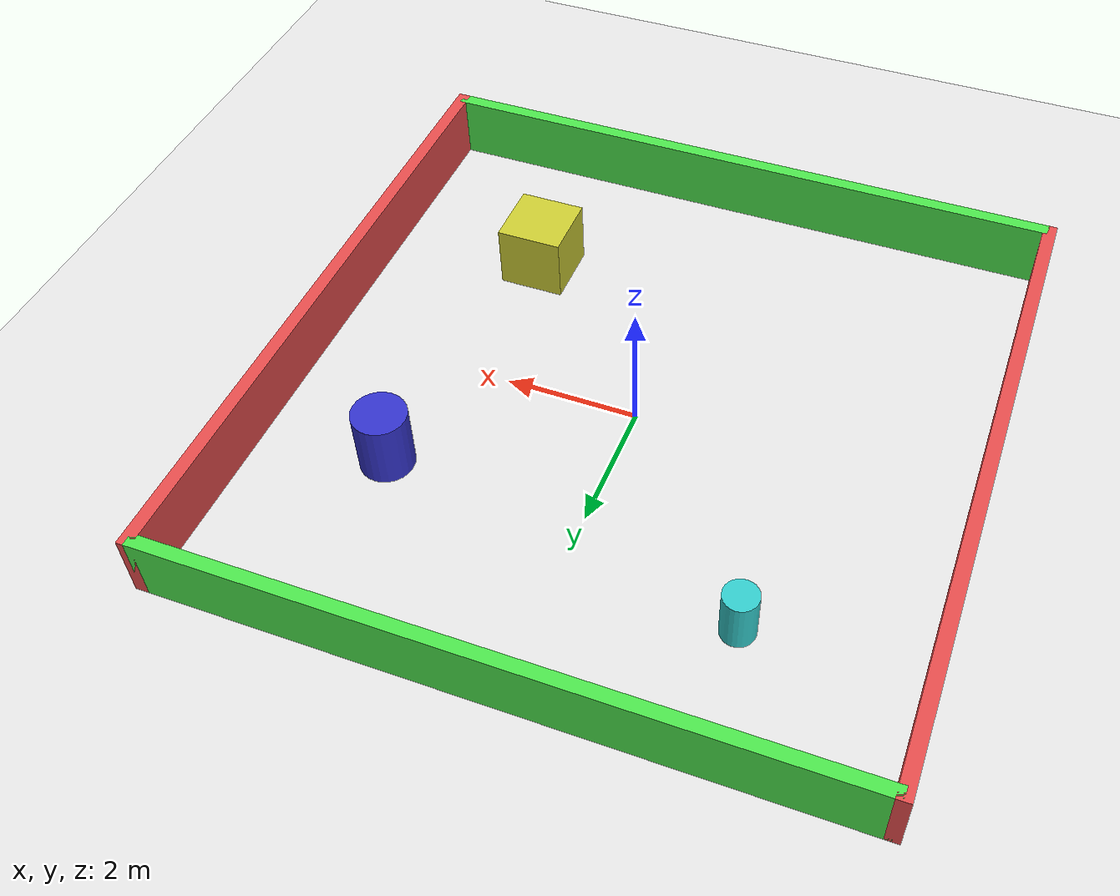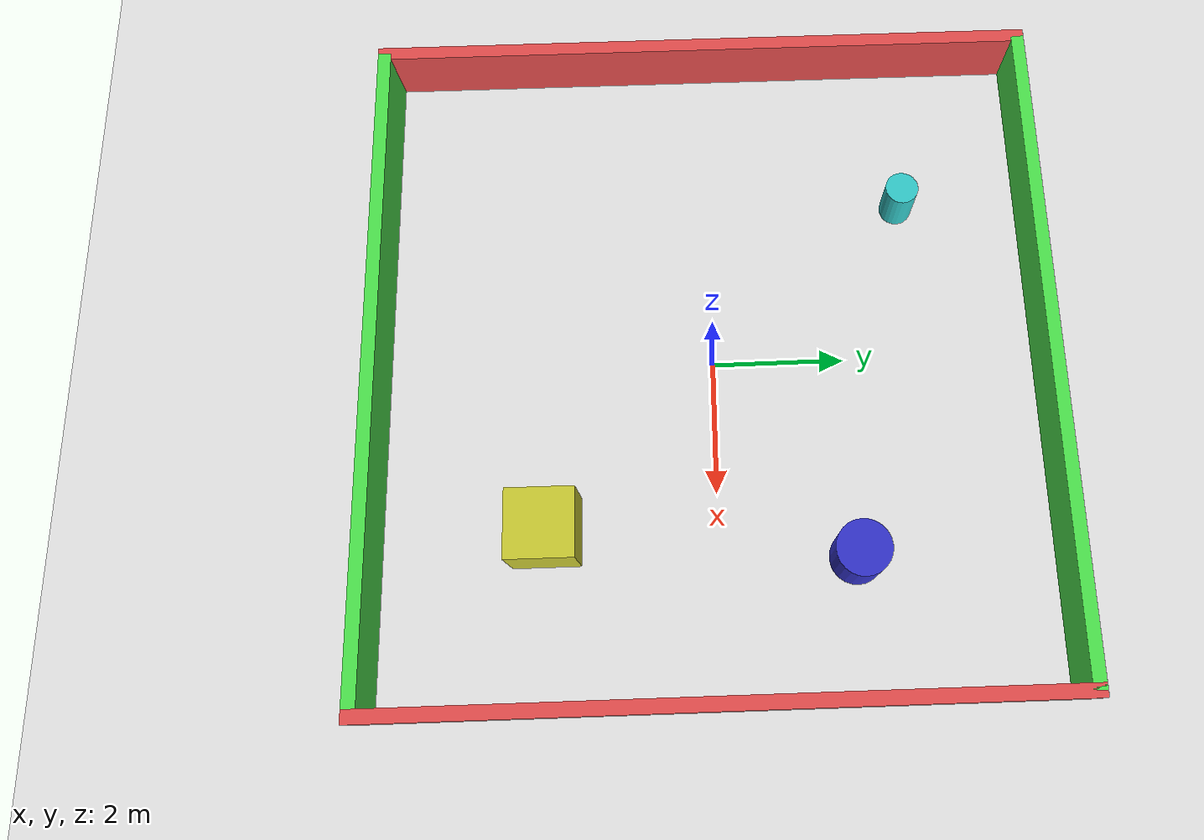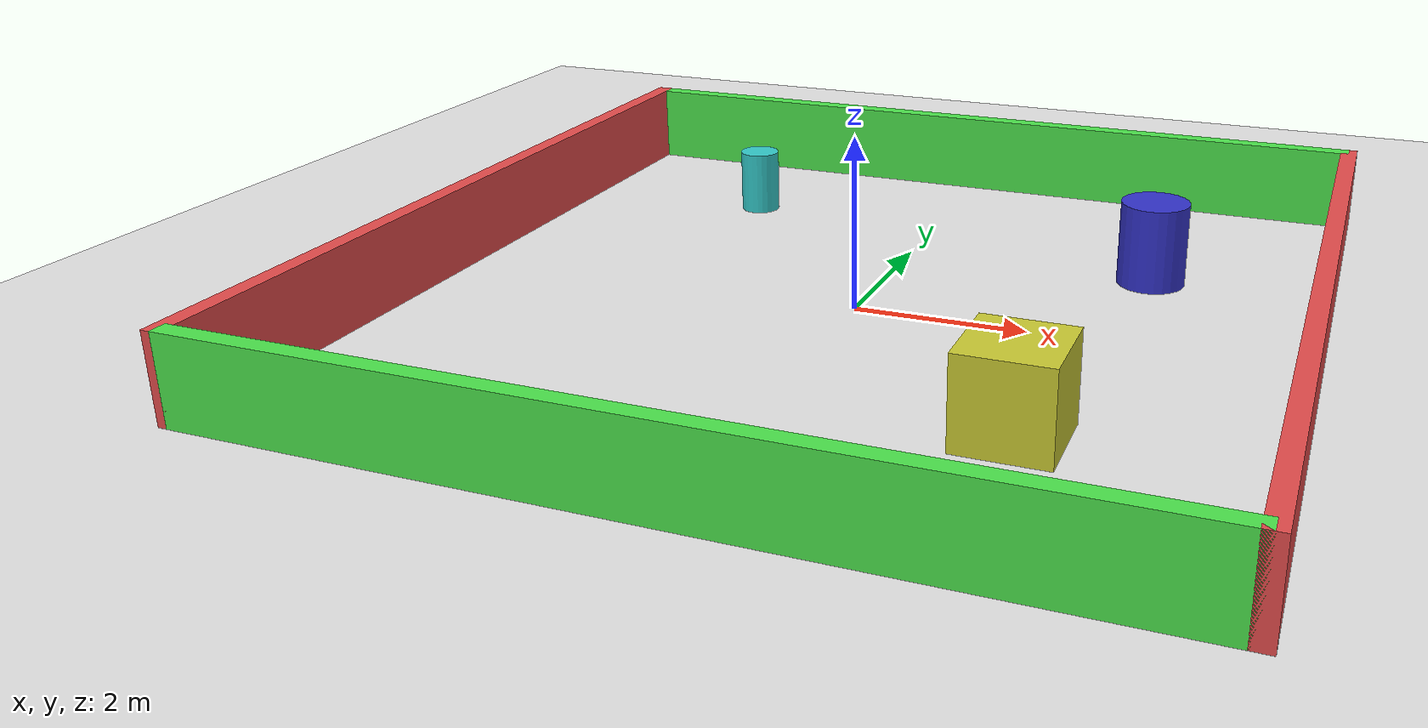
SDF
<?xml version="1.0" ?>
<sdf version="1.8">
  <world name="simple_walled">

    <!-- Physics parameters -->
    <physics name="1ms" type="ignored">
      <max_step_size>0.001</max_step_size>
      <real_time_factor>1.0</real_time_factor>
    </physics>

    <!-- Essential System Plugins for Gazebo Sim (Harmonic) -->
    <plugin
      filename="gz-sim-physics-system"
      name="gz::sim::systems::Physics">
    </plugin>
    <plugin
      filename="gz-sim-user-commands-system"
      name="gz::sim::systems::UserCommands">
    </plugin>
    <plugin
      filename="gz-sim-scene-broadcaster-system"
      name="gz::sim::systems::SceneBroadcaster">
    </plugin>
    <plugin
      filename="gz-sim-sensors-system"
      name="gz::sim::systems::Sensors">
      <render_engine>ogre2</render_engine>
    </plugin>

    <!-- Standard Gravity -->
    <gravity>0 0 -9.8</gravity>

    <!-- Ambient and Background Scene Lighting -->
    <scene>
      <ambient>0.6 0.6 0.6 1.0</ambient>
      <background>0.8 0.8 0.8 1.0</background>
      <shadows>true</shadows>
      <grid>true</grid>
    </scene>

    <!-- Directional Light Source (Sun) -->
    <light type="directional" name="sun">
      <cast_shadows>true</cast_shadows>
      <pose>0 0 15 0 0 0</pose>
      <diffuse>0.9 0.9 0.9 1</diffuse>
      <specular>0.2 0.2 0.2 1</specular>
      <attenuation>
        <range>1000</range>
        <constant>0.9</constant>
        <linear>0.01</linear>
        <quadratic>0.001</quadratic>
      </attenuation>
      <direction>-0.5 0.1 -0.9</direction>
    </light>

    <!-- Ground Plane -->
    <model name="ground_plane">
      <static>true</static>
      <link name="link">
        <collision name="collision">
          <geometry>
            <plane>
              <normal>0 0 1</normal>
              <size>100 100</size>
            </plane>
          </geometry>
        </collision>
        <visual name="visual">
          <geometry>
            <plane>
              <normal>0 0 1</normal>
              <size>100 100</size>
            </plane>
          </geometry>
          <material>
            <ambient>0.9 0.9 0.9 1.0</ambient>
            <diffuse>0.9 0.9 0.9 1.0</diffuse>
            <specular>0.2 0.2 0.2 1.0</specular>
          </material>
        </visual>
      </link>
    </model>

    <!-- Walled Arena Boundaries (10m x 10m, 1m High) -->
    <model name="arena_walls">
      <static>true</static>

      <!-- North Wall -->
      <link name="north_wall">
        <pose>5 0 0.5 0 0 0</pose>
        <collision name="collision">
          <geometry>
            <box>
              <size>0.2 10.2 1.0</size>
            </box>
          </geometry>
        </collision>
        <visual name="visual">
          <geometry>
            <box>
              <size>0.2 10.2 1.0</size>
            </box>
          </geometry>
          <material>
            <ambient>0.9 0.3 0.3 1.0</ambient>
            <diffuse>0.9 0.3 0.3 1.0</diffuse>
            <specular>0.5 0.5 0.5 1.0</specular>
          </material>
        </visual>
      </link>

      <!-- South Wall -->
      <link name="south_wall">
        <pose>-5 0 0.5 0 0 0</pose>
        <collision name="collision">
          <geometry>
            <box>
              <size>0.2 10.2 1.0</size>
            </box>
          </geometry>
        </collision>
        <visual name="visual">
          <geometry>
            <box>
              <size>0.2 10.2 1.0</size>
            </box>
          </geometry>
          <material>
            <ambient>0.9 0.3 0.3 1.0</ambient>
            <diffuse>0.9 0.3 0.3 1.0</diffuse>
            <specular>0.5 0.5 0.5 1.0</specular>
          </material>
        </visual>
      </link>

      <!-- East Wall -->
      <link name="east_wall">
        <pose>0 5 0.5 0 0 0</pose>
        <collision name="collision">
          <geometry>
            <box>
              <size>10.0 0.2 1.0</size>
            </box>
          </geometry>
        </collision>
        <visual name="visual">
          <geometry>
            <box>
              <size>10.0 0.2 1.0</size>
            </box>
          </geometry>
          <material>
            <ambient>0.3 0.9 0.3 1.0</ambient>
            <diffuse>0.3 0.9 0.3 1.0</diffuse>
            <specular>0.5 0.5 0.5 1.0</specular>
          </material>
        </visual>
      </link>

      <!-- West Wall -->
      <link name="west_wall">
        <pose>0 -5 0.5 0 0 0</pose>
        <collision name="collision">
          <geometry>
            <box>
              <size>10.0 0.2 1.0</size>
            </box>
          </geometry>
        </collision>
        <visual name="visual">
          <geometry>
            <box>
              <size>10.0 0.2 1.0</size>
            </box>
          </geometry>
          <material>
            <ambient>0.3 0.9 0.3 1.0</ambient>
            <diffuse>0.3 0.9 0.3 1.0</diffuse>
            <specular>0.5 0.5 0.5 1.0</specular>
          </material>
        </visual>
      </link>

      <!-- Obstacle 1: Blue Cylinder -->
      <link name="obstacle_cylinder">
        <pose>3.0 2.0 0.5 0 0 0</pose>
        <collision name="collision">
          <geometry>
            <cylinder>
              <radius>0.4</radius>
              <length>1.0</length>
            </cylinder>
          </geometry>
        </collision>
        <visual name="visual">
          <geometry>
            <cylinder>
              <radius>0.4</radius>
              <length>1.0</length>
            </cylinder>
          </geometry>
          <material>
            <ambient>0.2 0.2 0.8 1.0</ambient>
            <diffuse>0.2 0.2 0.8 1.0</diffuse>
            <specular>0.5 0.5 0.5 1.0</specular>
          </material>
        </visual>
      </link>

      <!-- Obstacle 2: Yellow Box -->
      <link name="obstacle_box">
        <pose>2.5 -2.5 0.5 0 0 0</pose>
        <collision name="collision">
          <geometry>
            <box>
              <size>1.0 1.0 1.0</size>
            </box>
          </geometry>
        </collision>
        <visual name="visual">
          <geometry>
            <box>
              <size>1.0 1.0 1.0</size>
            </box>
          </geometry>
          <material>
            <ambient>0.8 0.8 0.2 1.0</ambient>
            <diffuse>0.8 0.8 0.2 1.0</diffuse>
            <specular>0.5 0.5 0.5 1.0</specular>
          </material>
        </visual>
      </link>

      <!-- Obstacle 3: Cyan Cylinder -->
      <link name="obstacle_cylinder_small">
        <pose>-2.5 3.0 0.4 0 0 0</pose>
        <collision name="collision">
          <geometry>
            <cylinder>
              <radius>0.25</radius>
              <length>0.8</length>
            </cylinder>
          </geometry>
        </collision>
        <visual name="visual">
          <geometry>
            <cylinder>
              <radius>0.25</radius>
              <length>0.8</length>
            </cylinder>
          </geometry>
          <material>
            <ambient>0.2 0.8 0.8 1.0</ambient>
            <diffuse>0.2 0.8 0.8 1.0</diffuse>
            <specular>0.5 0.5 0.5 1.0</specular>
          </material>
        </visual>
      </link>
    </model>

  </world>
</sdf>
